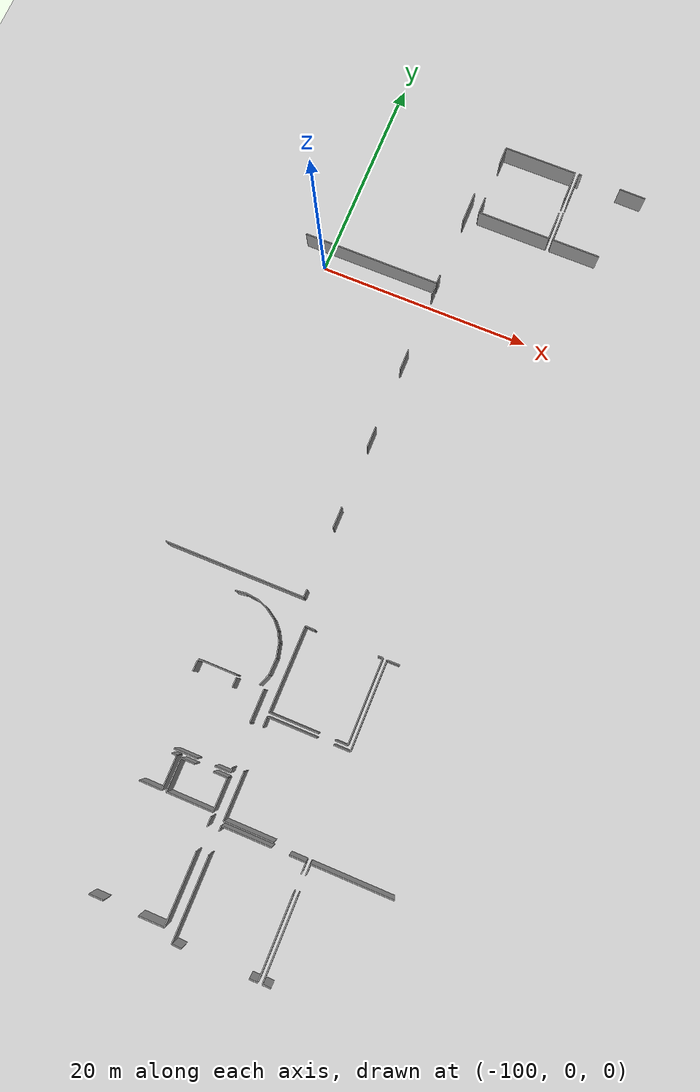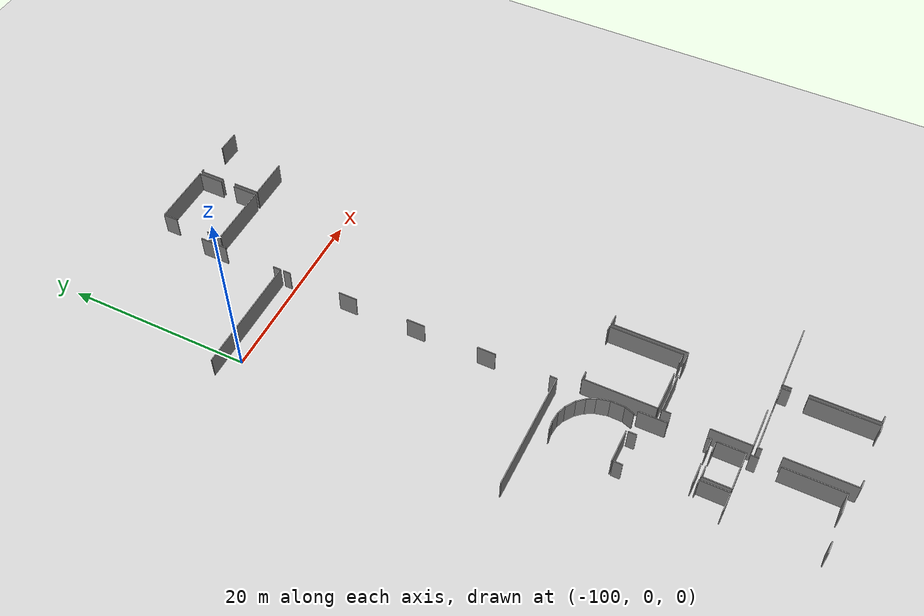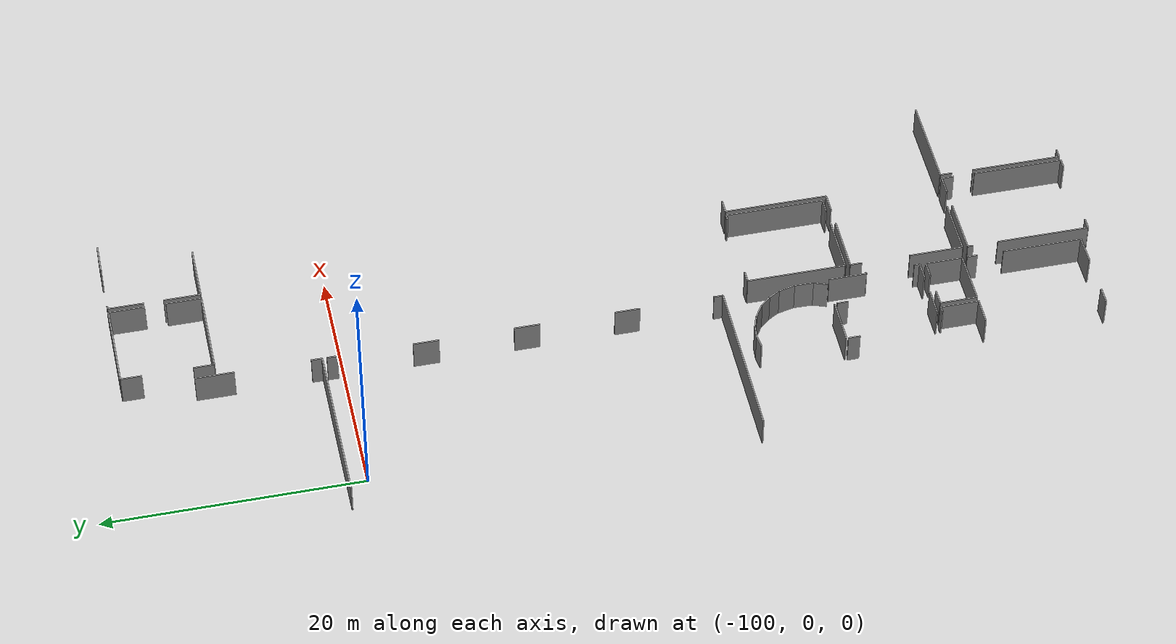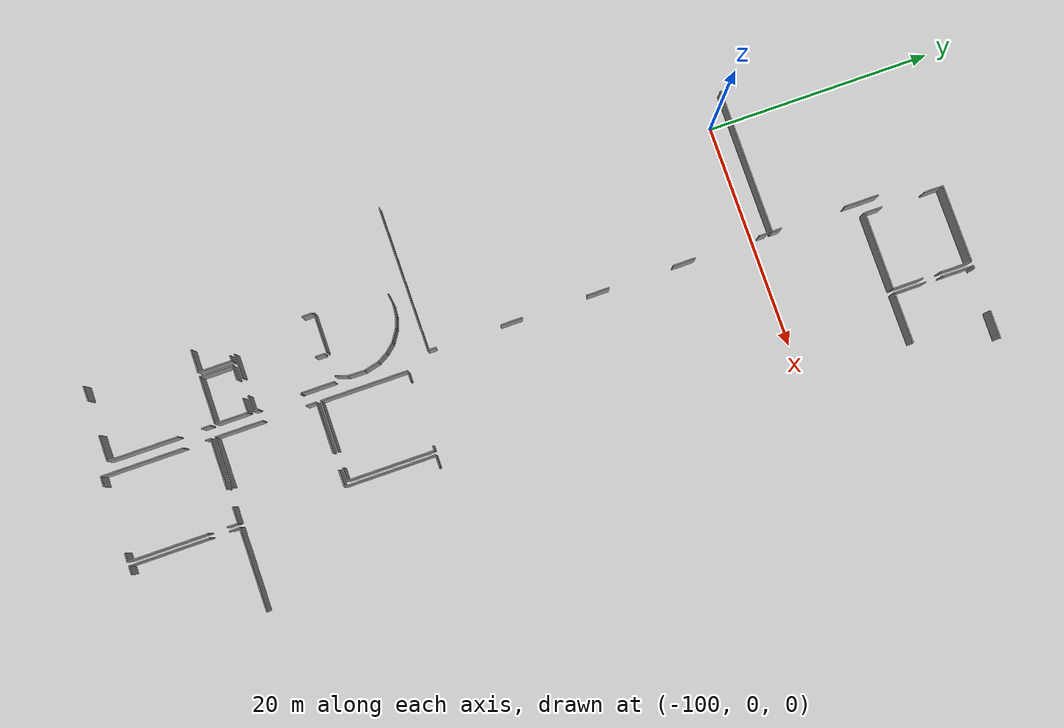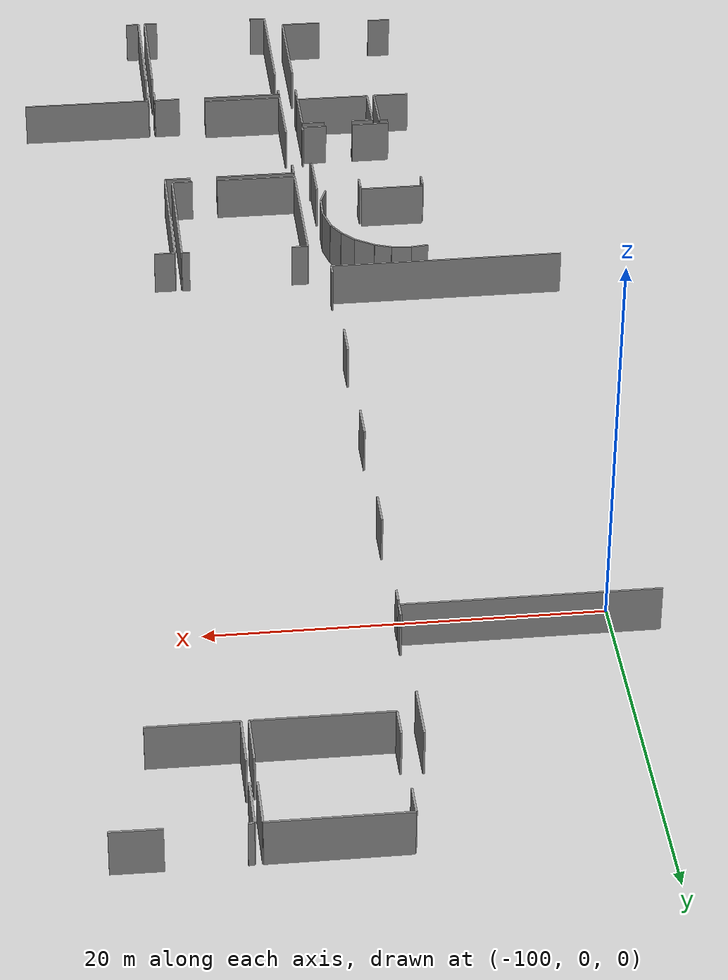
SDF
<sdf version="1.6">
 <world name="default">
  <model name="ground_plane">
   <static>1</static>
   <link name="link">
    <collision name="collision">
     <geometry><plane><normal>0 0 1</normal><size>100 100</size></plane></geometry>
     <surface><friction><ode><mu>100</mu><mu2>50</mu2></ode></friction></surface>
    </collision>
    <visual name="visual">
     <cast_shadows>0</cast_shadows>
     <geometry><plane><normal>0 0 1</normal><size>100 100</size></plane></geometry>
     <material>
      <script><uri>file://media/materials/scripts/gazebo.material</uri><name>Gazebo/Grey</name></script>
     </material>
    </visual>
   </link>
  </model>
  <model name="0510035519_A_40_1_102">
   <static>1</static>
   <link name="Wall_158">
    <collision name="Wall_158_Collision">
     <geometry><box><size>1.59334095819 0.1 2.5</size></box></geometry>
     <pose>0.796670479095 0 1.25 0 0 0</pose>
    </collision>
    <visual name="Wall_158_Visual">
     <pose>0.796670479095 0 1.25 0 0 0</pose>
     <geometry><box><size>1.59334095819 0.1 2.5</size></box></geometry>
     <material>
      <script><uri>file://media/materials/scripts/gazebo.material</uri><name>Gazebo/Grey</name></script>
      <ambient>1 1 1 1</ambient>
     </material>
    </visual>
    <pose>28.1949421782 -59.1056042699 0 0 0 1.57079632679</pose>
   </link>
   <link name="Wall_159">
    <collision name="Wall_159_Collision">
     <geometry><box><size>1.62612784344 0.1 2.5</size></box></geometry>
     <pose>0.813063921718 0 1.25 0 0 0</pose>
    </collision>
    <visual name="Wall_159_Visual">
     <pose>0.813063921718 0 1.25 0 0 0</pose>
     <geometry><box><size>1.62612784344 0.1 2.5</size></box></geometry>
     <material>
      <script><uri>file://media/materials/scripts/gazebo.material</uri><name>Gazebo/Grey</name></script>
      <ambient>1 1 1 1</ambient>
     </material>
    </visual>
    <pose>28.1949421782 -53.6334985386 0 0 0 1.57079632679</pose>
   </link>
   <link name="Wall_160">
    <collision name="Wall_160_Collision">
     <geometry><box><size>6.89668318719 0.1 2.5</size></box></geometry>
     <pose>3.4483415936 0 1.25 0 0 0</pose>
    </collision>
    <visual name="Wall_160_Visual">
     <pose>3.4483415936 0 1.25 0 0 0</pose>
     <geometry><box><size>6.89668318719 0.1 2.5</size></box></geometry>
     <material>
      <script><uri>file://media/materials/scripts/gazebo.material</uri><name>Gazebo/Grey</name></script>
      <ambient>1 1 1 1</ambient>
     </material>
    </visual>
    <pose>28.1949421782 -52.0073706951 0 0 0 0.0</pose>
   </link>
   <link name="Wall_161">
    <collision name="Wall_161_Collision">
     <geometry><box><size>2.77087304613 0.1 2.5</size></box></geometry>
     <pose>1.38543652307 0 1.25 0 0 0</pose>
    </collision>
    <visual name="Wall_161_Visual">
     <pose>1.38543652307 0 1.25 0 0 0</pose>
     <geometry><box><size>2.77087304613 0.1 2.5</size></box></geometry>
     <material>
      <script><uri>file://media/materials/scripts/gazebo.material</uri><name>Gazebo/Grey</name></script>
      <ambient>1 1 1 1</ambient>
     </material>
    </visual>
    <pose>35.0916253654 -52.0073706951 0 0 0 -1.57079632679</pose>
   </link>
   <link name="Wall_162">
    <collision name="Wall_162_Collision">
     <geometry><box><size>2.73351124666 0.1 2.5</size></box></geometry>
     <pose>1.36675562333 0 1.25 0 0 0</pose>
    </collision>
    <visual name="Wall_162_Visual">
     <pose>1.36675562333 0 1.25 0 0 0</pose>
     <geometry><box><size>2.73351124666 0.1 2.5</size></box></geometry>
     <material>
      <script><uri>file://media/materials/scripts/gazebo.material</uri><name>Gazebo/Grey</name></script>
      <ambient>1 1 1 1</ambient>
     </material>
    </visual>
    <pose>35.0916253654 -56.390646842 0 0 0 -1.57079632679</pose>
   </link>
   <link name="Wall_163">
    <collision name="Wall_163_Collision">
     <geometry><box><size>6.89670814437 0.1 2.5</size></box></geometry>
     <pose>3.44835407219 0 1.25 0 0 0</pose>
    </collision>
    <visual name="Wall_163_Visual">
     <pose>3.44835407219 0 1.25 0 0 0</pose>
     <geometry><box><size>6.89670814437 0.1 2.5</size></box></geometry>
     <material>
      <script><uri>file://media/materials/scripts/gazebo.material</uri><name>Gazebo/Grey</name></script>
      <ambient>1 1 1 1</ambient>
     </material>
    </visual>
    <pose>35.0916253654 -59.1241580887 0 0 0 3.13890240764</pose>
   </link>
   <link name="Wall_170">
    <collision name="Wall_170_Collision">
     <geometry><box><size>4.52154022112 0.1 2.5</size></box></geometry>
     <pose>2.26077011056 0 1.25 0 0 0</pose>
    </collision>
    <visual name="Wall_170_Visual">
     <pose>2.26077011056 0 1.25 0 0 0</pose>
     <geometry><box><size>4.52154022112 0.1 2.5</size></box></geometry>
     <material>
      <script><uri>file://media/materials/scripts/gazebo.material</uri><name>Gazebo/Grey</name></script>
      <ambient>1 1 1 1</ambient>
     </material>
    </visual>
    <pose>39.9941542763 -59.1195831745 0 0 0 3.14159265359</pose>
   </link>
   <link name="Wall_171">
    <collision name="Wall_171_Collision">
     <geometry><box><size>2.85525479731 0.1 2.5</size></box></geometry>
     <pose>1.42762739865 0 1.25 0 0 0</pose>
    </collision>
    <visual name="Wall_171_Visual">
     <pose>1.42762739865 0 1.25 0 0 0</pose>
     <geometry><box><size>2.85525479731 0.1 2.5</size></box></geometry>
     <material>
      <script><uri>file://media/materials/scripts/gazebo.material</uri><name>Gazebo/Grey</name></script>
      <ambient>1 1 1 1</ambient>
     </material>
    </visual>
    <pose>35.4726140552 -59.1195831745 0 0 0 1.57079632679</pose>
   </link>
   <link name="Wall_172">
    <collision name="Wall_172_Collision">
     <geometry><box><size>2.76273986529 0.1 2.5</size></box></geometry>
     <pose>1.38136993265 0 1.25 0 0 0</pose>
    </collision>
    <visual name="Wall_172_Visual">
     <pose>1.38136993265 0 1.25 0 0 0</pose>
     <geometry><box><size>2.76273986529 0.1 2.5</size></box></geometry>
     <material>
      <script><uri>file://media/materials/scripts/gazebo.material</uri><name>Gazebo/Grey</name></script>
      <ambient>1 1 1 1</ambient>
     </material>
    </visual>
    <pose>35.4726140552 -54.7579107892 0 0 0 1.57079632679</pose>
   </link>
   <link name="Wall_173">
    <collision name="Wall_173_Collision">
     <geometry><box><size>0.295844452917 0.1 2.5</size></box></geometry>
     <pose>0.147922226458 0 1.25 0 0 0</pose>
    </collision>
    <visual name="Wall_173_Visual">
     <pose>0.147922226458 0 1.25 0 0 0</pose>
     <geometry><box><size>0.295844452917 0.1 2.5</size></box></geometry>
     <material>
      <script><uri>file://media/materials/scripts/gazebo.material</uri><name>Gazebo/Grey</name></script>
      <ambient>1 1 1 1</ambient>
     </material>
    </visual>
    <pose>35.4726140552 -51.9951709239 0 0 0 0.0</pose>
   </link>
   <link name="Wall_174">
    <collision name="Wall_174_Collision">
     <geometry><box><size>2.49628925277 0.1 2.5</size></box></geometry>
     <pose>1.24814462639 0 1.25 0 0 0</pose>
    </collision>
    <visual name="Wall_174_Visual">
     <pose>1.24814462639 0 1.25 0 0 0</pose>
     <geometry><box><size>2.49628925277 0.1 2.5</size></box></geometry>
     <material>
      <script><uri>file://media/materials/scripts/gazebo.material</uri><name>Gazebo/Grey</name></script>
      <ambient>1 1 1 1</ambient>
     </material>
    </visual>
    <pose>39.5318337781 -51.9951709239 0 0 0 -0.0115054489174</pose>
   </link>
   <link name="Wall_384">
    <collision name="Wall_384_Collision">
     <geometry><box><size>0.807726521794 0.1 2.5</size></box></geometry>
     <pose>0.403863260897 0 1.25 0 0 0</pose>
    </collision>
    <visual name="Wall_384_Visual">
     <pose>0.403863260897 0 1.25 0 0 0</pose>
     <geometry><box><size>0.807726521794 0.1 2.5</size></box></geometry>
     <material>
      <script><uri>file://media/materials/scripts/gazebo.material</uri><name>Gazebo/Grey</name></script>
      <ambient>1 1 1 1</ambient>
     </material>
    </visual>
    <pose>27.1203456602 -67.4736307028 0 0 0 -1.57079632679</pose>
   </link>
   <link name="Wall_385">
    <collision name="Wall_385_Collision">
     <geometry><box><size>1.99085017156 0.1 2.5</size></box></geometry>
     <pose>0.99542508578 0 1.25 0 0 0</pose>
    </collision>
    <visual name="Wall_385_Visual">
     <pose>0.99542508578 0 1.25 0 0 0</pose>
     <geometry><box><size>1.99085017156 0.1 2.5</size></box></geometry>
     <material>
      <script><uri>file://media/materials/scripts/gazebo.material</uri><name>Gazebo/Grey</name></script>
      <ambient>1 1 1 1</ambient>
     </material>
    </visual>
    <pose>27.1203456602 -74.0584572373 0 0 0 -1.57079632679</pose>
   </link>
   <link name="Wall_386">
    <collision name="Wall_386_Collision">
     <geometry><box><size>1.98398780023 0.1 2.5</size></box></geometry>
     <pose>0.991993900114 0 1.25 0 0 0</pose>
    </collision>
    <visual name="Wall_386_Visual">
     <pose>0.991993900114 0 1.25 0 0 0</pose>
     <geometry><box><size>1.98398780023 0.1 2.5</size></box></geometry>
     <material>
      <script><uri>file://media/materials/scripts/gazebo.material</uri><name>Gazebo/Grey</name></script>
      <ambient>1 1 1 1</ambient>
     </material>
    </visual>
    <pose>27.1203456602 -81.8284407167 0 0 0 -1.57079632679</pose>
   </link>
   <link name="Wall_387">
    <collision name="Wall_387_Collision">
     <geometry><box><size>1.95857161012 0.1 2.5</size></box></geometry>
     <pose>0.979285805058 0 1.25 0 0 0</pose>
    </collision>
    <visual name="Wall_387_Visual">
     <pose>0.979285805058 0 1.25 0 0 0</pose>
     <geometry><box><size>1.95857161012 0.1 2.5</size></box></geometry>
     <material>
      <script><uri>file://media/materials/scripts/gazebo.material</uri><name>Gazebo/Grey</name></script>
      <ambient>1 1 1 1</ambient>
     </material>
    </visual>
    <pose>27.1203456602 -89.6124031008 0 0 0 -1.57079632679</pose>
   </link>
   <link name="Wall_388">
    <collision name="Wall_388_Collision">
     <geometry><box><size>0.720294827805 0.1 2.5</size></box></geometry>
     <pose>0.360147413903 0 1.25 0 0 0</pose>
    </collision>
    <visual name="Wall_388_Visual">
     <pose>0.360147413903 0 1.25 0 0 0</pose>
     <geometry><box><size>0.720294827805 0.1 2.5</size></box></geometry>
     <material>
      <script><uri>file://media/materials/scripts/gazebo.material</uri><name>Gazebo/Grey</name></script>
      <ambient>1 1 1 1</ambient>
     </material>
    </visual>
    <pose>27.1203456602 -97.3457872665 0 0 0 -1.57079632679</pose>
   </link>
   <link name="Wall_389">
    <collision name="Wall_389_Collision">
     <geometry><box><size>12.9244118252 0.1 2.5</size></box></geometry>
     <pose>6.46220591262 0 1.25 0 0 0</pose>
    </collision>
    <visual name="Wall_389_Visual">
     <pose>6.46220591262 0 1.25 0 0 0</pose>
     <geometry><box><size>12.9244118252 0.1 2.5</size></box></geometry>
     <material>
      <script><uri>file://media/materials/scripts/gazebo.material</uri><name>Gazebo/Grey</name></script>
      <ambient>1 1 1 1</ambient>
     </material>
    </visual>
    <pose>27.1203456602 -98.0660820943 0 0 0 -3.13962612646</pose>
   </link>
   <link name="Wall_392">
    <collision name="Wall_392_Collision">
     <geometry><box><size>3.00495615707 0.1 2.5</size></box></geometry>
     <pose>1.50247807854 0 1.25 0 0 0</pose>
    </collision>
    <visual name="Wall_392_Visual">
     <pose>1.50247807854 0 1.25 0 0 0</pose>
     <geometry><box><size>3.00495615707 0.1 2.5</size></box></geometry>
     <material>
      <script><uri>file://media/materials/scripts/gazebo.material</uri><name>Gazebo/Grey</name></script>
      <ambient>1 1 1 1</ambient>
     </material>
    </visual>
    <pose>27.1251747363 -57.4535519126 0 0 0 -1.57079632679</pose>
   </link>
   <link name="Wall_393">
    <collision name="Wall_393_Collision">
     <geometry><box><size>0.84712161647 0.1 2.5</size></box></geometry>
     <pose>0.423560808235 0 1.25 0 0 0</pose>
    </collision>
    <visual name="Wall_393_Visual">
     <pose>0.423560808235 0 1.25 0 0 0</pose>
     <geometry><box><size>0.84712161647 0.1 2.5</size></box></geometry>
     <material>
      <script><uri>file://media/materials/scripts/gazebo.material</uri><name>Gazebo/Grey</name></script>
      <ambient>1 1 1 1</ambient>
     </material>
    </visual>
    <pose>27.1251747363 -66.2805947388 0 0 0 -1.57079632679</pose>
   </link>
   <link name="Wall_394">
    <collision name="Wall_394_Collision">
     <geometry><box><size>12.9419240056 0.1 2.5</size></box></geometry>
     <pose>6.4709620028 0 1.25 0 0 0</pose>
    </collision>
    <visual name="Wall_394_Visual">
     <pose>6.4709620028 0 1.25 0 0 0</pose>
     <geometry><box><size>12.9419240056 0.1 2.5</size></box></geometry>
     <material>
      <script><uri>file://media/materials/scripts/gazebo.material</uri><name>Gazebo/Grey</name></script>
      <ambient>1 1 1 1</ambient>
     </material>
    </visual>
    <pose>27.1251747363 -67.1277163553 0 0 0 3.14159265359</pose>
   </link>
   <link name="Wall_464">
    <collision name="Wall_464_Collision">
     <geometry><box><size>0.473757783708 0.1 2.5</size></box></geometry>
     <pose>0.236878891854 0 1.25 0 0 0</pose>
    </collision>
    <visual name="Wall_464_Visual">
     <pose>0.236878891854 0 1.25 0 0 0</pose>
     <geometry><box><size>0.473757783708 0.1 2.5</size></box></geometry>
     <material>
      <script><uri>file://media/materials/scripts/gazebo.material</uri><name>Gazebo/Grey</name></script>
      <ambient>1 1 1 1</ambient>
     </material>
    </visual>
    <pose>22.0640487991 -114.000508324 0 0 0 0.0</pose>
   </link>
   <link name="Wall_465">
    <collision name="Wall_465_Collision">
     <geometry><box><size>2.98462320498 0.1 2.5</size></box></geometry>
     <pose>1.49231160249 0 1.25 0 0 0</pose>
    </collision>
    <visual name="Wall_465_Visual">
     <pose>1.49231160249 0 1.25 0 0 0</pose>
     <geometry><box><size>2.98462320498 0.1 2.5</size></box></geometry>
     <material>
      <script><uri>file://media/materials/scripts/gazebo.material</uri><name>Gazebo/Grey</name></script>
      <ambient>1 1 1 1</ambient>
     </material>
    </visual>
    <pose>22.5378065828 -114.000508324 0 0 0 -1.57079632679</pose>
   </link>
   <link name="Wall_466">
    <collision name="Wall_466_Collision">
     <geometry><box><size>2.04555765135 0.1 2.5</size></box></geometry>
     <pose>1.02277882567 0 1.25 0 0 0</pose>
    </collision>
    <visual name="Wall_466_Visual">
     <pose>1.02277882567 0 1.25 0 0 0</pose>
     <geometry><box><size>2.04555765135 0.1 2.5</size></box></geometry>
     <material>
      <script><uri>file://media/materials/scripts/gazebo.material</uri><name>Gazebo/Grey</name></script>
      <ambient>1 1 1 1</ambient>
     </material>
    </visual>
    <pose>22.5378065828 -116.985131529 0 0 0 3.13376478167</pose>
   </link>
   <link name="Wall_467">
    <collision name="Wall_467_Collision">
     <geometry><box><size>2.89719151099 0.1 2.5</size></box></geometry>
     <pose>1.4485957555 0 1.25 0 0 0</pose>
    </collision>
    <visual name="Wall_467_Visual">
     <pose>1.4485957555 0 1.25 0 0 0</pose>
     <geometry><box><size>2.89719151099 0.1 2.5</size></box></geometry>
     <material>
      <script><uri>file://media/materials/scripts/gazebo.material</uri><name>Gazebo/Grey</name></script>
      <ambient>1 1 1 1</ambient>
     </material>
    </visual>
    <pose>22.9447197865 -116.9706443 0 0 0 1.57079632679</pose>
   </link>
   <link name="Wall_468">
    <collision name="Wall_468_Collision">
     <geometry><box><size>1.25378065828 0.1 2.5</size></box></geometry>
     <pose>0.62689032914 0 1.25 0 0 0</pose>
    </collision>
    <visual name="Wall_468_Visual">
     <pose>0.62689032914 0 1.25 0 0 0</pose>
     <geometry><box><size>1.25378065828 0.1 2.5</size></box></geometry>
     <material>
      <script><uri>file://media/materials/scripts/gazebo.material</uri><name>Gazebo/Grey</name></script>
      <ambient>1 1 1 1</ambient>
     </material>
    </visual>
    <pose>22.9447197865 -114.073452789 0 0 0 0.0</pose>
   </link>
   <link name="Wall_469">
    <collision name="Wall_469_Collision">
     <geometry><box><size>1.28555089592 0.1 2.5</size></box></geometry>
     <pose>0.64277544796 0 1.25 0 0 0</pose>
    </collision>
    <visual name="Wall_469_Visual">
     <pose>0.64277544796 0 1.25 0 0 0</pose>
     <geometry><box><size>1.28555089592 0.1 2.5</size></box></geometry>
     <material>
      <script><uri>file://media/materials/scripts/gazebo.material</uri><name>Gazebo/Grey</name></script>
      <ambient>1 1 1 1</ambient>
     </material>
    </visual>
    <pose>25.8543652307 -114.073452789 0 0 0 0.0</pose>
   </link>
   <link name="Wall_470">
    <collision name="Wall_470_Collision">
     <geometry><box><size>2.90151226331 0.1 2.5</size></box></geometry>
     <pose>1.45075613166 0 1.25 0 0 0</pose>
    </collision>
    <visual name="Wall_470_Visual">
     <pose>1.45075613166 0 1.25 0 0 0</pose>
     <geometry><box><size>2.90151226331 0.1 2.5</size></box></geometry>
     <material>
      <script><uri>file://media/materials/scripts/gazebo.material</uri><name>Gazebo/Grey</name></script>
      <ambient>1 1 1 1</ambient>
     </material>
    </visual>
    <pose>27.1399161266 -114.073452789 0 0 0 -1.57079632679</pose>
   </link>
   <link name="Wall_471">
    <collision name="Wall_471_Collision">
     <geometry><box><size>4.1951985651 0.1 2.5</size></box></geometry>
     <pose>2.09759928255 0 1.25 0 0 0</pose>
    </collision>
    <visual name="Wall_471_Visual">
     <pose>2.09759928255 0 1.25 0 0 0</pose>
     <geometry><box><size>4.1951985651 0.1 2.5</size></box></geometry>
     <material>
      <script><uri>file://media/materials/scripts/gazebo.material</uri><name>Gazebo/Grey</name></script>
      <ambient>1 1 1 1</ambient>
     </material>
    </visual>
    <pose>27.1399161266 -116.974965053 0 0 0 3.14056272544</pose>
   </link>
   <link name="Wall_485">
    <collision name="Wall_485_Collision">
     <geometry><box><size>0.948881827515 0.1 2.5</size></box></geometry>
     <pose>0.474440913757 0 1.25 0 0 0</pose>
    </collision>
    <visual name="Wall_485_Visual">
     <pose>0.474440913757 0 1.25 0 0 0</pose>
     <geometry><box><size>0.948881827515 0.1 2.5</size></box></geometry>
     <material>
      <script><uri>file://media/materials/scripts/gazebo.material</uri><name>Gazebo/Grey</name></script>
      <ambient>1 1 1 1</ambient>
     </material>
    </visual>
    <pose>21.483288855 -99.7214385564 0 0 0 0.129737181188</pose>
   </link>
   <link name="Wall_486">
    <collision name="Wall_486_Collision">
     <geometry><box><size>1.11499003948 0.1 2.5</size></box></geometry>
     <pose>0.55749501974 0 1.25 0 0 0</pose>
    </collision>
    <visual name="Wall_486_Visual">
     <pose>0.55749501974 0 1.25 0 0 0</pose>
     <geometry><box><size>1.11499003948 0.1 2.5</size></box></geometry>
     <material>
      <script><uri>file://media/materials/scripts/gazebo.material</uri><name>Gazebo/Grey</name></script>
      <ambient>1 1 1 1</ambient>
     </material>
    </visual>
    <pose>22.424196213 -99.5986783581 0 0 0 -0.097718010799</pose>
   </link>
   <link name="Wall_487">
    <collision name="Wall_487_Collision">
     <geometry><box><size>0.970501103334 0.1 2.5</size></box></geometry>
     <pose>0.485250551667 0 1.25 0 0 0</pose>
    </collision>
    <visual name="Wall_487_Visual">
     <pose>0.485250551667 0 1.25 0 0 0</pose>
     <geometry><box><size>0.970501103334 0.1 2.5</size></box></geometry>
     <material>
      <script><uri>file://media/materials/scripts/gazebo.material</uri><name>Gazebo/Grey</name></script>
      <ambient>1 1 1 1</ambient>
     </material>
    </visual>
    <pose>23.5338670733 -99.7074596518 0 0 0 -0.334338923696</pose>
   </link>
   <link name="Wall_488">
    <collision name="Wall_488_Collision">
     <geometry><box><size>1.24885384962 0.1 2.5</size></box></geometry>
     <pose>0.624426924809 0 1.25 0 0 0</pose>
    </collision>
    <visual name="Wall_488_Visual">
     <pose>0.624426924809 0 1.25 0 0 0</pose>
     <geometry><box><size>1.24885384962 0.1 2.5</size></box></geometry>
     <material>
      <script><uri>file://media/materials/scripts/gazebo.material</uri><name>Gazebo/Grey</name></script>
      <ambient>1 1 1 1</ambient>
     </material>
    </visual>
    <pose>24.4506290507 -100.025924514 0 0 0 -0.575923033058</pose>
   </link>
   <link name="Wall_489">
    <collision name="Wall_489_Collision">
     <geometry><box><size>1.02208562763 0.1 2.5</size></box></geometry>
     <pose>0.511042813817 0 1.25 0 0 0</pose>
    </collision>
    <visual name="Wall_489_Visual">
     <pose>0.511042813817 0 1.25 0 0 0</pose>
     <geometry><box><size>1.02208562763 0.1 2.5</size></box></geometry>
     <material>
      <script><uri>file://media/materials/scripts/gazebo.material</uri><name>Gazebo/Grey</name></script>
      <ambient>1 1 1 1</ambient>
     </material>
    </visual>
    <pose>25.4980302453 -100.706061761 0 0 0 -0.845041975307</pose>
   </link>
   <link name="Wall_490">
    <collision name="Wall_490_Collision">
     <geometry><box><size>1.01441529605 0.1 2.5</size></box></geometry>
     <pose>0.507207648027 0 1.25 0 0 0</pose>
    </collision>
    <visual name="Wall_490_Visual">
     <pose>0.507207648027 0 1.25 0 0 0</pose>
     <geometry><box><size>1.01441529605 0.1 2.5</size></box></geometry>
     <material>
      <script><uri>file://media/materials/scripts/gazebo.material</uri><name>Gazebo/Grey</name></script>
      <ambient>1 1 1 1</ambient>
     </material>
    </visual>
    <pose>26.1763883594 -101.47058076 0 0 0 -1.04795205053</pose>
   </link>
   <link name="Wall_491">
    <collision name="Wall_491_Collision">
     <geometry><box><size>1.33720006183 0.1 2.5</size></box></geometry>
     <pose>0.668600030913 0 1.25 0 0 0</pose>
    </collision>
    <visual name="Wall_491_Visual">
     <pose>0.668600030913 0 1.25 0 0 0</pose>
     <geometry><box><size>1.33720006183 0.1 2.5</size></box></geometry>
     <material>
      <script><uri>file://media/materials/scripts/gazebo.material</uri><name>Gazebo/Grey</name></script>
      <ambient>1 1 1 1</ambient>
     </material>
    </visual>
    <pose>26.6829330283 -102.349472614 0 0 0 -1.33287083824</pose>
   </link>
   <link name="Wall_492">
    <collision name="Wall_492_Collision">
     <geometry><box><size>1.48830564313 0.1 2.5</size></box></geometry>
     <pose>0.744152821567 0 1.25 0 0 0</pose>
    </collision>
    <visual name="Wall_492_Visual">
     <pose>0.744152821567 0 1.25 0 0 0</pose>
     <geometry><box><size>1.48830564313 0.1 2.5</size></box></geometry>
     <material>
      <script><uri>file://media/materials/scripts/gazebo.material</uri><name>Gazebo/Grey</name></script>
      <ambient>1 1 1 1</ambient>
     </material>
    </visual>
    <pose>26.9980937857 -103.649002415 0 0 0 -1.58667885113</pose>
   </link>
   <link name="Wall_493">
    <collision name="Wall_493_Collision">
     <geometry><box><size>1.11449854538 0.1 2.5</size></box></geometry>
     <pose>0.557249272689 0 1.25 0 0 0</pose>
    </collision>
    <visual name="Wall_493_Visual">
     <pose>0.557249272689 0 1.25 0 0 0</pose>
     <geometry><box><size>1.11449854538 0.1 2.5</size></box></geometry>
     <material>
      <script><uri>file://media/materials/scripts/gazebo.material</uri><name>Gazebo/Grey</name></script>
      <ambient>1 1 1 1</ambient>
     </material>
    </visual>
    <pose>26.9744567289 -105.137120346 0 0 0 -1.92089222001</pose>
   </link>
   <link name="Wall_494">
    <collision name="Wall_494_Collision">
     <geometry><box><size>3.55445418732 0.1 2.5</size></box></geometry>
     <pose>1.77722709366 0 1.25 0 0 0</pose>
    </collision>
    <visual name="Wall_494_Visual">
     <pose>1.77722709366 0 1.25 0 0 0</pose>
     <geometry><box><size>3.55445418732 0.1 2.5</size></box></geometry>
     <material>
      <script><uri>file://media/materials/scripts/gazebo.material</uri><name>Gazebo/Grey</name></script>
      <ambient>1 1 1 1</ambient>
     </material>
    </visual>
    <pose>24.4923116025 -106.184013216 0 0 0 3.14159265359</pose>
   </link>
   <link name="Wall_500">
    <collision name="Wall_500_Collision">
     <geometry><box><size>0.928453424832 0.1 2.5</size></box></geometry>
     <pose>0.464226712416 0 1.25 0 0 0</pose>
    </collision>
    <visual name="Wall_500_Visual">
     <pose>0.464226712416 0 1.25 0 0 0</pose>
     <geometry><box><size>0.928453424832 0.1 2.5</size></box></geometry>
     <material>
      <script><uri>file://media/materials/scripts/gazebo.material</uri><name>Gazebo/Grey</name></script>
      <ambient>1 1 1 1</ambient>
     </material>
    </visual>
    <pose>20.9294700724 -106.326089719 0 0 0 -1.57079632679</pose>
   </link>
   <link name="Wall_502">
    <collision name="Wall_502_Collision">
     <geometry><box><size>0.871012835176 0.1 2.5</size></box></geometry>
     <pose>0.435506417588 0 1.25 0 0 0</pose>
    </collision>
    <visual name="Wall_502_Visual">
     <pose>0.435506417588 0 1.25 0 0 0</pose>
     <geometry><box><size>0.871012835176 0.1 2.5</size></box></geometry>
     <material>
      <script><uri>file://media/materials/scripts/gazebo.material</uri><name>Gazebo/Grey</name></script>
      <ambient>1 1 1 1</ambient>
     </material>
    </visual>
    <pose>24.5439064684 -107.254543144 0 0 0 1.57079632679</pose>
   </link>
   <link name="Wall_503">
    <collision name="Wall_503_Collision">
     <geometry><box><size>2.95437793875 0.1 2.5</size></box></geometry>
     <pose>1.47718896937 0 1.25 0 0 0</pose>
    </collision>
    <visual name="Wall_503_Visual">
     <pose>1.47718896937 0 1.25 0 0 0</pose>
     <geometry><box><size>2.95437793875 0.1 2.5</size></box></geometry>
     <material>
      <script><uri>file://media/materials/scripts/gazebo.material</uri><name>Gazebo/Grey</name></script>
      <ambient>1 1 1 1</ambient>
     </material>
    </visual>
    <pose>27.0672258228 -106.383530309 0 0 0 -1.57079632679</pose>
   </link>
   <link name="Wall_504">
    <collision name="Wall_504_Collision">
     <geometry><box><size>0.121997712543 0.1 2.5</size></box></geometry>
     <pose>0.0609988562714 0 1.25 0 0 0</pose>
    </collision>
    <visual name="Wall_504_Visual">
     <pose>0.0609988562714 0 1.25 0 0 0</pose>
     <geometry><box><size>0.121997712543 0.1 2.5</size></box></geometry>
     <material>
      <script><uri>file://media/materials/scripts/gazebo.material</uri><name>Gazebo/Grey</name></script>
      <ambient>1 1 1 1</ambient>
     </material>
    </visual>
    <pose>27.0672258228 -109.337908248 0 0 0 0.0</pose>
   </link>
   <link name="Wall_505">
    <collision name="Wall_505_Collision">
     <geometry><box><size>0.439445927056 0.1 2.5</size></box></geometry>
     <pose>0.219722963528 0 1.25 0 0 0</pose>
    </collision>
    <visual name="Wall_505_Visual">
     <pose>0.219722963528 0 1.25 0 0 0</pose>
     <geometry><box><size>0.439445927056 0.1 2.5</size></box></geometry>
     <material>
      <script><uri>file://media/materials/scripts/gazebo.material</uri><name>Gazebo/Grey</name></script>
      <ambient>1 1 1 1</ambient>
     </material>
    </visual>
    <pose>27.1892235354 -113.16584064 0 0 0 -1.57079632679</pose>
   </link>
   <link name="Wall_506">
    <collision name="Wall_506_Collision">
     <geometry><box><size>1.40449866565 0.1 2.5</size></box></geometry>
     <pose>0.702249332825 0 1.25 0 0 0</pose>
    </collision>
    <visual name="Wall_506_Visual">
     <pose>0.702249332825 0 1.25 0 0 0</pose>
     <geometry><box><size>1.40449866565 0.1 2.5</size></box></geometry>
     <material>
      <script><uri>file://media/materials/scripts/gazebo.material</uri><name>Gazebo/Grey</name></script>
      <ambient>1 1 1 1</ambient>
     </material>
    </visual>
    <pose>27.1892235354 -113.605286568 0 0 0 3.14159265359</pose>
   </link>
   <link name="Wall_507">
    <collision name="Wall_507_Collision">
     <geometry><box><size>2.15351378828 0.1 2.5</size></box></geometry>
     <pose>1.07675689414 0 1.25 0 0 0</pose>
    </collision>
    <visual name="Wall_507_Visual">
     <pose>1.07675689414 0 1.25 0 0 0</pose>
     <geometry><box><size>2.15351378828 0.1 2.5</size></box></geometry>
     <material>
      <script><uri>file://media/materials/scripts/gazebo.material</uri><name>Gazebo/Grey</name></script>
      <ambient>1 1 1 1</ambient>
     </material>
    </visual>
    <pose>24.213495997 -113.605286568 0 0 0 3.14159265359</pose>
   </link>
   <link name="Wall_517">
    <collision name="Wall_517_Collision">
     <geometry><box><size>0.817130512136 0.1 2.5</size></box></geometry>
     <pose>0.408565256068 0 1.25 0 0 0</pose>
    </collision>
    <visual name="Wall_517_Visual">
     <pose>0.408565256068 0 1.25 0 0 0</pose>
     <geometry><box><size>0.817130512136 0.1 2.5</size></box></geometry>
     <material>
      <script><uri>file://media/materials/scripts/gazebo.material</uri><name>Gazebo/Grey</name></script>
      <ambient>1 1 1 1</ambient>
     </material>
    </visual>
    <pose>27.1571991358 -117.364595247 0 0 0 -1.57079632679</pose>
   </link>
   <link name="Wall_518">
    <collision name="Wall_518_Collision">
     <geometry><box><size>6.21857923497 0.1 2.5</size></box></geometry>
     <pose>3.10928961749 0 1.25 0 0 0</pose>
    </collision>
    <visual name="Wall_518_Visual">
     <pose>3.10928961749 0 1.25 0 0 0</pose>
     <geometry><box><size>6.21857923497 0.1 2.5</size></box></geometry>
     <material>
      <script><uri>file://media/materials/scripts/gazebo.material</uri><name>Gazebo/Grey</name></script>
      <ambient>1 1 1 1</ambient>
     </material>
    </visual>
    <pose>27.1571991358 -120.254924387 0 0 0 -1.57079632679</pose>
   </link>
   <link name="Wall_519">
    <collision name="Wall_519_Collision">
     <geometry><box><size>2.293048672 0.1 2.5</size></box></geometry>
     <pose>1.146524336 0 1.25 0 0 0</pose>
    </collision>
    <visual name="Wall_519_Visual">
     <pose>1.146524336 0 1.25 0 0 0</pose>
     <geometry><box><size>2.293048672 0.1 2.5</size></box></geometry>
     <material>
      <script><uri>file://media/materials/scripts/gazebo.material</uri><name>Gazebo/Grey</name></script>
      <ambient>1 1 1 1</ambient>
     </material>
    </visual>
    <pose>27.1571991358 -126.473503622 0 0 0 3.14159265359</pose>
   </link>
   <link name="Wall_520">
    <collision name="Wall_520_Collision">
     <geometry><box><size>1.31478248706 0.1 2.5</size></box></geometry>
     <pose>0.657391243529 0 1.25 0 0 0</pose>
    </collision>
    <visual name="Wall_520_Visual">
     <pose>0.657391243529 0 1.25 0 0 0</pose>
     <geometry><box><size>1.31478248706 0.1 2.5</size></box></geometry>
     <material>
      <script><uri>file://media/materials/scripts/gazebo.material</uri><name>Gazebo/Grey</name></script>
      <ambient>1 1 1 1</ambient>
     </material>
    </visual>
    <pose>21.7974329648 -126.473503622 0 0 0 3.13946623112</pose>
   </link>
   <link name="Wall_521">
    <collision name="Wall_521_Collision">
     <geometry><box><size>7.2588638963 0.1 2.5</size></box></geometry>
     <pose>3.62943194815 0 1.25 0 0 0</pose>
    </collision>
    <visual name="Wall_521_Visual">
     <pose>3.62943194815 0 1.25 0 0 0</pose>
     <geometry><box><size>7.2588638963 0.1 2.5</size></box></geometry>
     <material>
      <script><uri>file://media/materials/scripts/gazebo.material</uri><name>Gazebo/Grey</name></script>
      <ambient>1 1 1 1</ambient>
     </material>
    </visual>
    <pose>28.2124793493 -127.370949295 0 0 0 1.57079632679</pose>
   </link>
   <link name="Wall_522">
    <collision name="Wall_522_Collision">
     <geometry><box><size>0.446562460287 0.1 2.5</size></box></geometry>
     <pose>0.223281230144 0 1.25 0 0 0</pose>
    </collision>
    <visual name="Wall_522_Visual">
     <pose>0.223281230144 0 1.25 0 0 0</pose>
     <geometry><box><size>0.446562460287 0.1 2.5</size></box></geometry>
     <material>
      <script><uri>file://media/materials/scripts/gazebo.material</uri><name>Gazebo/Grey</name></script>
      <ambient>1 1 1 1</ambient>
     </material>
    </visual>
    <pose>28.2124793493 -118.153513788 0 0 0 1.57079632679</pose>
   </link>
   <link name="Wall_523">
    <collision name="Wall_523_Collision">
     <geometry><box><size>4.49053246918 0.1 2.5</size></box></geometry>
     <pose>2.24526623459 0 1.25 0 0 0</pose>
    </collision>
    <visual name="Wall_523_Visual">
     <pose>2.24526623459 0 1.25 0 0 0</pose>
     <geometry><box><size>4.49053246918 0.1 2.5</size></box></geometry>
     <material>
      <script><uri>file://media/materials/scripts/gazebo.material</uri><name>Gazebo/Grey</name></script>
      <ambient>1 1 1 1</ambient>
     </material>
    </visual>
    <pose>28.2124793493 -117.706951328 0 0 0 0.0</pose>
   </link>
   <link name="Wall_524">
    <collision name="Wall_524_Collision">
     <geometry><box><size>1.46676833143 0.1 2.5</size></box></geometry>
     <pose>0.733384165714 0 1.25 0 0 0</pose>
    </collision>
    <visual name="Wall_524_Visual">
     <pose>0.733384165714 0 1.25 0 0 0</pose>
     <geometry><box><size>1.46676833143 0.1 2.5</size></box></geometry>
     <material>
      <script><uri>file://media/materials/scripts/gazebo.material</uri><name>Gazebo/Grey</name></script>
      <ambient>1 1 1 1</ambient>
     </material>
    </visual>
    <pose>34.2241707968 -117.706951328 0 0 0 0.0</pose>
   </link>
   <link name="Wall_525">
    <collision name="Wall_525_Collision">
     <geometry><box><size>0.953615453044 0.1 2.5</size></box></geometry>
     <pose>0.476807726522 0 1.25 0 0 0</pose>
    </collision>
    <visual name="Wall_525_Visual">
     <pose>0.476807726522 0 1.25 0 0 0</pose>
     <geometry><box><size>0.953615453044 0.1 2.5</size></box></geometry>
     <material>
      <script><uri>file://media/materials/scripts/gazebo.material</uri><name>Gazebo/Grey</name></script>
      <ambient>1 1 1 1</ambient>
     </material>
    </visual>
    <pose>35.6909391282 -117.706951328 0 0 0 -1.57079632679</pose>
   </link>
   <link name="Wall_526">
    <collision name="Wall_526_Collision">
     <geometry><box><size>7.04968865167 0.1 2.5</size></box></geometry>
     <pose>3.52484432584 0 1.25 0 0 0</pose>
    </collision>
    <visual name="Wall_526_Visual">
     <pose>3.52484432584 0 1.25 0 0 0</pose>
     <geometry><box><size>7.04968865167 0.1 2.5</size></box></geometry>
     <material>
      <script><uri>file://media/materials/scripts/gazebo.material</uri><name>Gazebo/Grey</name></script>
      <ambient>1 1 1 1</ambient>
     </material>
    </visual>
    <pose>35.6909391282 -120.348710128 0 0 0 -1.57079632679</pose>
   </link>
   <link name="Wall_527">
    <collision name="Wall_527_Collision">
     <geometry><box><size>0.742661075105 0.1 2.5</size></box></geometry>
     <pose>0.371330537552 0 1.25 0 0 0</pose>
    </collision>
    <visual name="Wall_527_Visual">
     <pose>0.371330537552 0 1.25 0 0 0</pose>
     <geometry><box><size>0.742661075105 0.1 2.5</size></box></geometry>
     <material>
      <script><uri>file://media/materials/scripts/gazebo.material</uri><name>Gazebo/Grey</name></script>
      <ambient>1 1 1 1</ambient>
     </material>
    </visual>
    <pose>35.6909391282 -127.39839878 0 0 0 3.14159265359</pose>
   </link>
   <link name="Wall_528">
    <collision name="Wall_528_Collision">
     <geometry><box><size>0.896087062945 0.1 2.5</size></box></geometry>
     <pose>0.448043531473 0 1.25 0 0 0</pose>
    </collision>
    <visual name="Wall_528_Visual">
     <pose>0.448043531473 0 1.25 0 0 0</pose>
     <geometry><box><size>0.896087062945 0.1 2.5</size></box></geometry>
     <material>
      <script><uri>file://media/materials/scripts/gazebo.material</uri><name>Gazebo/Grey</name></script>
      <ambient>1 1 1 1</ambient>
     </material>
    </visual>
    <pose>29.1081458889 -127.39839878 0 0 0 3.11095525107</pose>
   </link>
   <link name="Wall_529">
    <collision name="Wall_529_Collision">
     <geometry><box><size>7.06239674673 0.1 2.5</size></box></geometry>
     <pose>3.53119837336 0 1.25 0 0 0</pose>
    </collision>
    <visual name="Wall_529_Visual">
     <pose>3.53119837336 0 1.25 0 0 0</pose>
     <geometry><box><size>7.06239674673 0.1 2.5</size></box></geometry>
     <material>
      <script><uri>file://media/materials/scripts/gazebo.material</uri><name>Gazebo/Grey</name></script>
      <ambient>1 1 1 1</ambient>
     </material>
    </visual>
    <pose>36.0790443513 -127.382132418 0 0 0 1.57079632679</pose>
   </link>
   <link name="Wall_530">
    <collision name="Wall_530_Collision">
     <geometry><box><size>0.926420129623 0.1 2.5</size></box></geometry>
     <pose>0.463210064811 0 1.25 0 0 0</pose>
    </collision>
    <visual name="Wall_530_Visual">
     <pose>0.463210064811 0 1.25 0 0 0</pose>
     <geometry><box><size>0.926420129623 0.1 2.5</size></box></geometry>
     <material>
      <script><uri>file://media/materials/scripts/gazebo.material</uri><name>Gazebo/Grey</name></script>
      <ambient>1 1 1 1</ambient>
     </material>
    </visual>
    <pose>36.0790443513 -118.619138391 0 0 0 1.57079632679</pose>
   </link>
   <link name="Wall_531">
    <collision name="Wall_531_Collision">
     <geometry><box><size>7.36408692337 0.1 2.5</size></box></geometry>
     <pose>3.68204346169 0 1.25 0 0 0</pose>
    </collision>
    <visual name="Wall_531_Visual">
     <pose>3.68204346169 0 1.25 0 0 0</pose>
     <geometry><box><size>7.36408692337 0.1 2.5</size></box></geometry>
     <material>
      <script><uri>file://media/materials/scripts/gazebo.material</uri><name>Gazebo/Grey</name></script>
      <ambient>1 1 1 1</ambient>
     </material>
    </visual>
    <pose>36.0790443513 -117.692718262 0 0 0 0.0</pose>
   </link>
   <link name="Wall_535">
    <collision name="Wall_535_Collision">
     <geometry><box><size>0.764891785531 0.1 2.5</size></box></geometry>
     <pose>0.382445892765 0 1.25 0 0 0</pose>
    </collision>
    <visual name="Wall_535_Visual">
     <pose>0.382445892765 0 1.25 0 0 0</pose>
     <geometry><box><size>0.764891785531 0.1 2.5</size></box></geometry>
     <material>
      <script><uri>file://media/materials/scripts/gazebo.material</uri><name>Gazebo/Grey</name></script>
      <ambient>1 1 1 1</ambient>
     </material>
    </visual>
    <pose>36.8438175118 -127.395602999 0 0 0 3.1239806496</pose>
   </link>
   <link name="Wall_539">
    <collision name="Wall_539_Collision">
     <geometry><box><size>4.47934934553 0.1 2.5</size></box></geometry>
     <pose>2.23967467277 0 1.25 0 0 0</pose>
    </collision>
    <visual name="Wall_539_Visual">
     <pose>2.23967467277 0 1.25 0 0 0</pose>
     <geometry><box><size>4.47934934553 0.1 2.5</size></box></geometry>
     <material>
      <script><uri>file://media/materials/scripts/gazebo.material</uri><name>Gazebo/Grey</name></script>
      <ambient>1 1 1 1</ambient>
     </material>
    </visual>
    <pose>32.6925911806 -117.30080061 0 0 0 3.14159265359</pose>
   </link>
   <link name="Wall_540">
    <collision name="Wall_540_Collision">
     <geometry><box><size>4.20993773033 0.1 2.5</size></box></geometry>
     <pose>2.10496886517 0 1.25 0 0 0</pose>
    </collision>
    <visual name="Wall_540_Visual">
     <pose>2.10496886517 0 1.25 0 0 0</pose>
     <geometry><box><size>4.20993773033 0.1 2.5</size></box></geometry>
     <material>
      <script><uri>file://media/materials/scripts/gazebo.material</uri><name>Gazebo/Grey</name></script>
      <ambient>1 1 1 1</ambient>
     </material>
    </visual>
    <pose>28.213241835 -117.30080061 0 0 0 1.57079632679</pose>
   </link>
   <link name="Wall_541">
    <collision name="Wall_541_Collision">
     <geometry><box><size>0.913966196467 0.1 2.5</size></box></geometry>
     <pose>0.456983098234 0 1.25 0 0 0</pose>
    </collision>
    <visual name="Wall_541_Visual">
     <pose>0.456983098234 0 1.25 0 0 0</pose>
     <geometry><box><size>0.913966196467 0.1 2.5</size></box></geometry>
     <material>
      <script><uri>file://media/materials/scripts/gazebo.material</uri><name>Gazebo/Grey</name></script>
      <ambient>1 1 1 1</ambient>
     </material>
    </visual>
    <pose>28.213241835 -109.274876096 0 0 0 1.57079632679</pose>
   </link>
   <link name="Wall_542">
    <collision name="Wall_542_Collision">
     <geometry><box><size>4.50196975473 0.1 2.5</size></box></geometry>
     <pose>2.25098487737 0 1.25 0 0 0</pose>
    </collision>
    <visual name="Wall_542_Visual">
     <pose>2.25098487737 0 1.25 0 0 0</pose>
     <geometry><box><size>4.50196975473 0.1 2.5</size></box></geometry>
     <material>
      <script><uri>file://media/materials/scripts/gazebo.material</uri><name>Gazebo/Grey</name></script>
      <ambient>1 1 1 1</ambient>
     </material>
    </visual>
    <pose>28.213241835 -108.3609099 0 0 0 0.0</pose>
   </link>
   <link name="Wall_543">
    <collision name="Wall_543_Collision">
     <geometry><box><size>1.48608463591 0.1 2.5</size></box></geometry>
     <pose>0.743042317957 0 1.25 0 0 0</pose>
    </collision>
    <visual name="Wall_543_Visual">
     <pose>0.743042317957 0 1.25 0 0 0</pose>
     <geometry><box><size>1.48608463591 0.1 2.5</size></box></geometry>
     <material>
      <script><uri>file://media/materials/scripts/gazebo.material</uri><name>Gazebo/Grey</name></script>
      <ambient>1 1 1 1</ambient>
     </material>
    </visual>
    <pose>34.210700216 -108.3609099 0 0 0 0.0</pose>
   </link>
   <link name="Wall_544">
    <collision name="Wall_544_Collision">
     <geometry><box><size>8.07192781802 0.1 2.5</size></box></geometry>
     <pose>4.03596390901 0 1.25 0 0 0</pose>
    </collision>
    <visual name="Wall_544_Visual">
     <pose>4.03596390901 0 1.25 0 0 0</pose>
     <geometry><box><size>8.07192781802 0.1 2.5</size></box></geometry>
     <material>
      <script><uri>file://media/materials/scripts/gazebo.material</uri><name>Gazebo/Grey</name></script>
      <ambient>1 1 1 1</ambient>
     </material>
    </visual>
    <pose>35.696784852 -108.3609099 0 0 0 1.57079632679</pose>
   </link>
   <link name="Wall_545">
    <collision name="Wall_545_Collision">
     <geometry><box><size>1.1457618503 0.1 2.5</size></box></geometry>
     <pose>0.572880925149 0 1.25 0 0 0</pose>
    </collision>
    <visual name="Wall_545_Visual">
     <pose>0.572880925149 0 1.25 0 0 0</pose>
     <geometry><box><size>1.1457618503 0.1 2.5</size></box></geometry>
     <material>
      <script><uri>file://media/materials/scripts/gazebo.material</uri><name>Gazebo/Grey</name></script>
      <ambient>1 1 1 1</ambient>
     </material>
    </visual>
    <pose>35.696784852 -100.288982082 0 0 0 0.0</pose>
   </link>
   <link name="Wall_566">
    <collision name="Wall_566_Collision">
     <geometry><box><size>7.67568941416 0.1 2.5</size></box></geometry>
     <pose>3.83784470708 0 1.25 0 0 0</pose>
    </collision>
    <visual name="Wall_566_Visual">
     <pose>3.83784470708 0 1.25 0 0 0</pose>
     <geometry><box><size>7.67568941416 0.1 2.5</size></box></geometry>
     <material>
      <script><uri>file://media/materials/scripts/gazebo.material</uri><name>Gazebo/Grey</name></script>
      <ambient>1 1 1 1</ambient>
     </material>
    </visual>
    <pose>28.2114627017 -107.93188461 0 0 0 1.57079632679</pose>
   </link>
   <link name="Wall_567">
    <collision name="Wall_567_Collision">
     <geometry><box><size>0.906341339433 0.1 2.5</size></box></geometry>
     <pose>0.453170669717 0 1.25 0 0 0</pose>
    </collision>
    <visual name="Wall_567_Visual">
     <pose>0.453170669717 0 1.25 0 0 0</pose>
     <geometry><box><size>0.906341339433 0.1 2.5</size></box></geometry>
     <material>
      <script><uri>file://media/materials/scripts/gazebo.material</uri><name>Gazebo/Grey</name></script>
      <ambient>1 1 1 1</ambient>
     </material>
    </visual>
    <pose>28.2114627017 -100.256195196 0 0 0 0.0</pose>
   </link>
   <link name="Wall_568">
    <collision name="Wall_568_Collision">
     <geometry><box><size>0.432075231923 0.1 2.5</size></box></geometry>
     <pose>0.216037615961 0 1.25 0 0 0</pose>
    </collision>
    <visual name="Wall_568_Visual">
     <pose>0.216037615961 0 1.25 0 0 0</pose>
     <geometry><box><size>0.432075231923 0.1 2.5</size></box></geometry>
     <material>
      <script><uri>file://media/materials/scripts/gazebo.material</uri><name>Gazebo/Grey</name></script>
      <ambient>1 1 1 1</ambient>
     </material>
    </visual>
    <pose>34.8758419113 -100.256195196 0 0 0 0.0</pose>
   </link>
   <link name="Wall_569">
    <collision name="Wall_569_Collision">
     <geometry><box><size>7.71889693735 0.1 2.5</size></box></geometry>
     <pose>3.85944846867 0 1.25 0 0 0</pose>
    </collision>
    <visual name="Wall_569_Visual">
     <pose>3.85944846867 0 1.25 0 0 0</pose>
     <geometry><box><size>7.71889693735 0.1 2.5</size></box></geometry>
     <material>
      <script><uri>file://media/materials/scripts/gazebo.material</uri><name>Gazebo/Grey</name></script>
      <ambient>1 1 1 1</ambient>
     </material>
    </visual>
    <pose>35.3079171432 -100.256195196 0 0 0 -1.57079632679</pose>
   </link>
   <link name="Wall_570">
    <collision name="Wall_570_Collision">
     <geometry><box><size>1.15592832634 0.1 2.5</size></box></geometry>
     <pose>0.577964163172 0 1.25 0 0 0</pose>
    </collision>
    <visual name="Wall_570_Visual">
     <pose>0.577964163172 0 1.25 0 0 0</pose>
     <geometry><box><size>1.15592832634 0.1 2.5</size></box></geometry>
     <material>
      <script><uri>file://media/materials/scripts/gazebo.material</uri><name>Gazebo/Grey</name></script>
      <ambient>1 1 1 1</ambient>
     </material>
    </visual>
    <pose>35.3079171432 -107.975092134 0 0 0 3.14159265359</pose>
   </link>
   <link name="Wall_571">
    <collision name="Wall_571_Collision">
     <geometry><box><size>4.4933282501 0.1 2.5</size></box></geometry>
     <pose>2.24666412505 0 1.25 0 0 0</pose>
    </collision>
    <visual name="Wall_571_Visual">
     <pose>2.24666412505 0 1.25 0 0 0</pose>
     <geometry><box><size>4.4933282501 0.1 2.5</size></box></geometry>
     <material>
      <script><uri>file://media/materials/scripts/gazebo.material</uri><name>Gazebo/Grey</name></script>
      <ambient>1 1 1 1</ambient>
     </material>
    </visual>
    <pose>32.7025034947 -107.975092134 0 0 0 3.14159265359</pose>
   </link>
   <link name="Wall_572">
    <collision name="Wall_572_Collision">
     <geometry><box><size>0.0432680311597 0.1 2.5</size></box></geometry>
     <pose>0.0216340155799 0 1.25 0 0 0</pose>
    </collision>
    <visual name="Wall_572_Visual">
     <pose>0.0216340155799 0 1.25 0 0 0</pose>
     <geometry><box><size>0.0432680311597 0.1 2.5</size></box></geometry>
     <material>
      <script><uri>file://media/materials/scripts/gazebo.material</uri><name>Gazebo/Grey</name></script>
      <ambient>1 1 1 1</ambient>
     </material>
    </visual>
    <pose>28.2091752446 -107.975092134 0 0 0 1.51790452793</pose>
   </link>
   <pose>-116.6 68.721527513 0 0 0 0</pose>
  </model>
 </world>
</sdf>
